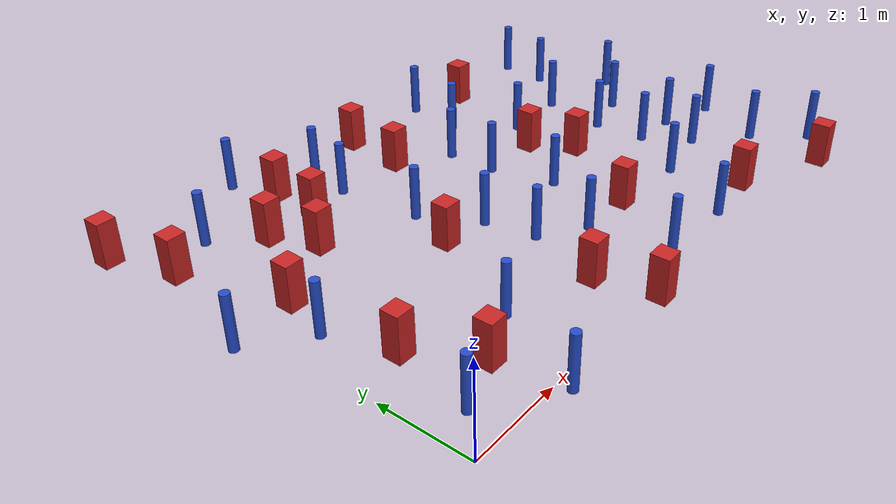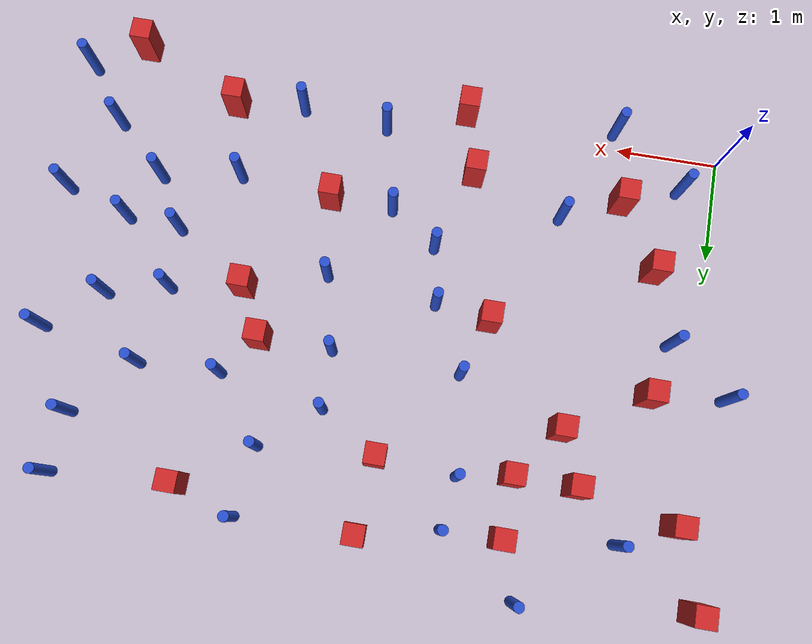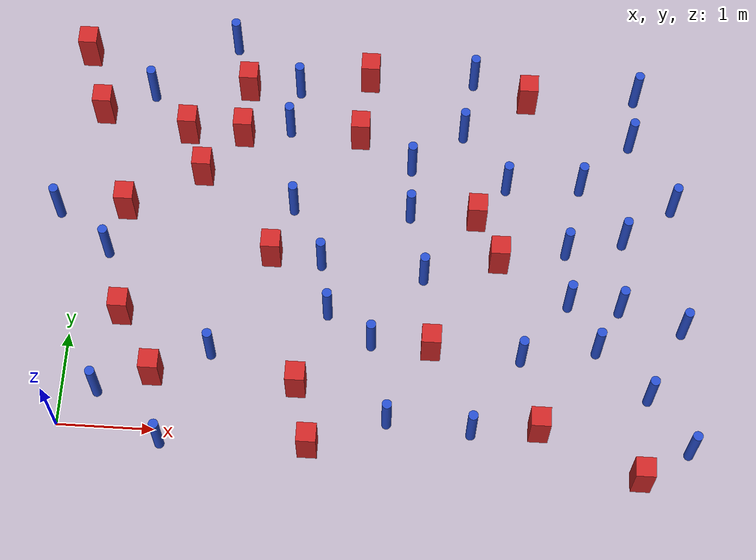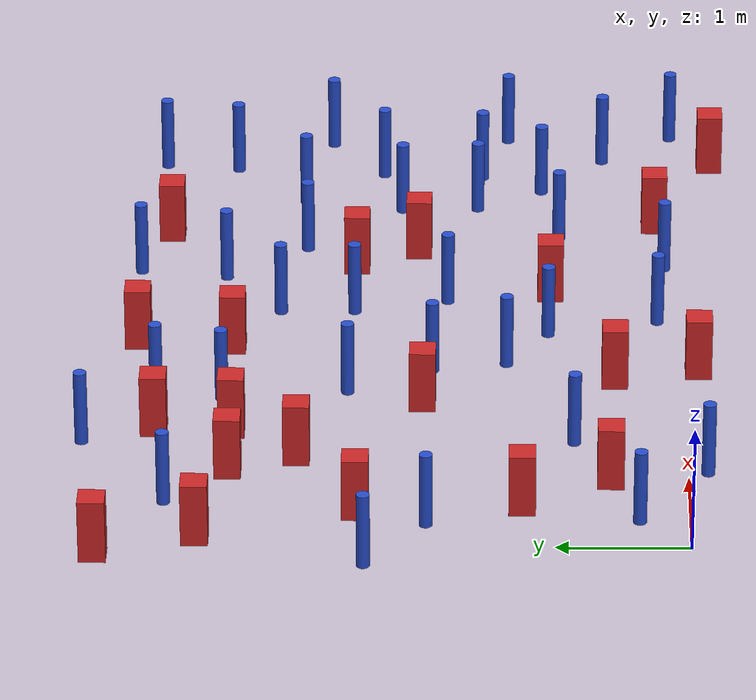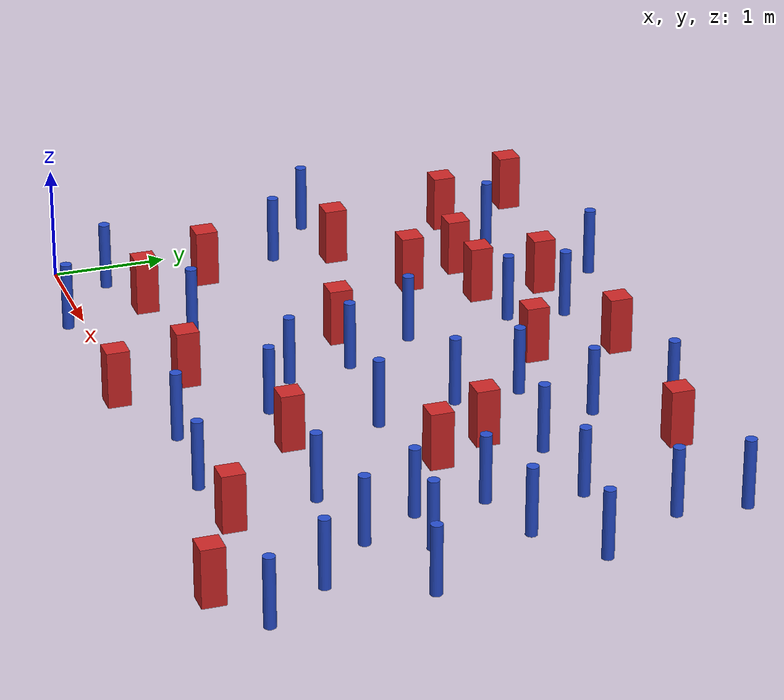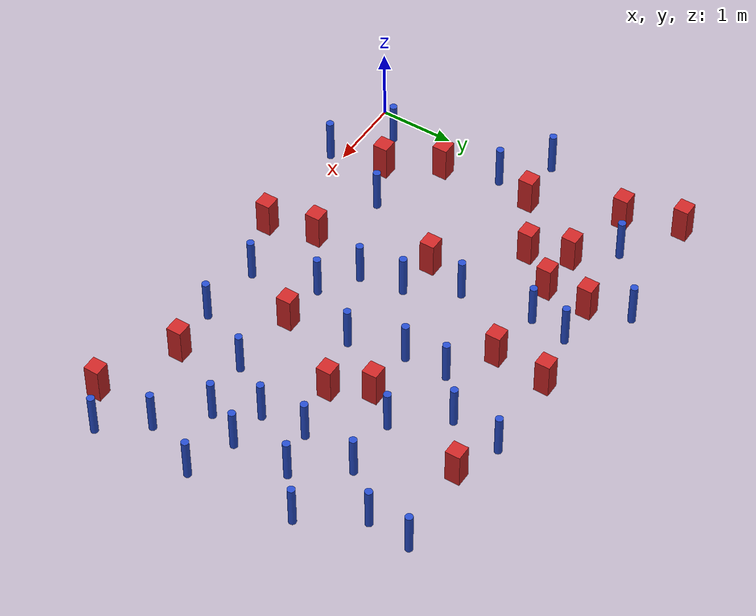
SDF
<sdf version="1.6">
 <model name="dense_14">
  <model name="pole_obstacle4">
   <static>true</static>
   <pose>3.4753207857 3.11598202601 7.38925637345e-09 -8.47170692798e-08 1.24976764939e-08 -1.74513093025e-07</pose>
   <link name="link">
    <pose>0 0 0.3 0 -0 0</pose>
    <inertial>
     <mass>1</mass>
     <inertia><ixx>0.145833</ixx><ixy>0</ixy><ixz>0</ixz><iyy>0.145833</iyy><iyz>0</iyz><izz>0.125</izz></inertia>
    </inertial>
    <collision name="collision">
     <geometry><cylinder><radius>0.05</radius><length>.6</length></cylinder></geometry>
    </collision>
    <visual name="visual">
     <geometry><cylinder><radius>0.05</radius><length>.6</length></cylinder></geometry>
     <material>
      <script><name>Gazebo/Blue</name><uri>file://media/materials/scripts/gazebo.material</uri></script>
     </material>
    </visual>
   </link>
  </model>
  <model name="square_post_obstacle7">
   <static>true</static>
   <pose>4.19259915789 2.54085804016 1.91545236811e-07 -7.35059704564e-06 1.12565212e-07 2.39332434364e-05</pose>
   <link name="link">
    <pose>0 0 0.25 0 -0 0</pose>
    <inertial>
     <mass>100</mass>
     <inertia>
      <ixx>0.166667</ixx>
      <ixy>0</ixy>
      <ixz>0</ixz>
      <iyy>0.166667</iyy>
      <iyz>0</iyz>
      <izz>0.166667</izz>
     </inertia>
    </inertial>
    <collision name="collision"><geometry><box><size>.2 .2 .5</size></box></geometry></collision>
    <visual name="visual">
     <geometry><box><size>.2 .2 .5</size></box></geometry>
     <material>
      <script><name>Gazebo/Red</name><uri>file://media/materials/scripts/gazebo.material</uri></script>
     </material>
    </visual>
   </link>
  </model>
  <model name="pole_obstacle9">
   <static>true</static>
   <pose>2.12831113329 3.52207049719 7.38925637345e-09 -8.47170692798e-08 1.24976764939e-08 -1.74513093025e-07</pose>
   <link name="link">
    <pose>0 0 0.3 0 -0 0</pose>
    <inertial>
     <mass>1</mass>
     <inertia><ixx>0.145833</ixx><ixy>0</ixy><ixz>0</ixz><iyy>0.145833</iyy><iyz>0</iyz><izz>0.125</izz></inertia>
    </inertial>
    <collision name="collision">
     <geometry><cylinder><radius>0.05</radius><length>.6</length></cylinder></geometry>
    </collision>
    <visual name="visual">
     <geometry><cylinder><radius>0.05</radius><length>.6</length></cylinder></geometry>
     <material>
      <script><name>Gazebo/Blue</name><uri>file://media/materials/scripts/gazebo.material</uri></script>
     </material>
    </visual>
   </link>
  </model>
  <model name="pole_obstacle12">
   <static>true</static>
   <pose>6.36594659354 1.35749647897 7.38925637345e-09 -8.471706928e-08 1.24976765134e-08 -1.74513093015e-07</pose>
   <link name="link">
    <pose>0 0 0.3 0 -0 0</pose>
    <inertial>
     <mass>1</mass>
     <inertia><ixx>0.145833</ixx><ixy>0</ixy><ixz>0</ixz><iyy>0.145833</iyy><iyz>0</iyz><izz>0.125</izz></inertia>
    </inertial>
    <collision name="collision">
     <geometry><cylinder><radius>0.05</radius><length>.6</length></cylinder></geometry>
    </collision>
    <visual name="visual">
     <geometry><cylinder><radius>0.05</radius><length>.6</length></cylinder></geometry>
     <material>
      <script><name>Gazebo/Blue</name><uri>file://media/materials/scripts/gazebo.material</uri></script>
     </material>
    </visual>
   </link>
  </model>
  <model name="pole_obstacle15">
   <static>true</static>
   <pose>3.6611542165 1.82092345411 7.38925637345e-09 -8.471706928e-08 1.24976765152e-08 -1.74513093012e-07</pose>
   <link name="link">
    <pose>0 0 0.3 0 -0 0</pose>
    <inertial>
     <mass>1</mass>
     <inertia><ixx>0.145833</ixx><ixy>0</ixy><ixz>0</ixz><iyy>0.145833</iyy><iyz>0</iyz><izz>0.125</izz></inertia>
    </inertial>
    <collision name="collision">
     <geometry><cylinder><radius>0.05</radius><length>.6</length></cylinder></geometry>
    </collision>
    <visual name="visual">
     <geometry><cylinder><radius>0.05</radius><length>.6</length></cylinder></geometry>
     <material>
      <script><name>Gazebo/Blue</name><uri>file://media/materials/scripts/gazebo.material</uri></script>
     </material>
    </visual>
   </link>
  </model>
  <model name="pole_obstacle19">
   <static>true</static>
   <pose>1.50019494946 0.849117613071 7.38925637345e-09 -8.47170692799e-08 1.24976765075e-08 -1.74513093017e-07</pose>
   <link name="link">
    <pose>0 0 0.3 0 -0 0</pose>
    <inertial>
     <mass>1</mass>
     <inertia><ixx>0.145833</ixx><ixy>0</ixy><ixz>0</ixz><iyy>0.145833</iyy><iyz>0</iyz><izz>0.125</izz></inertia>
    </inertial>
    <collision name="collision">
     <geometry><cylinder><radius>0.05</radius><length>.6</length></cylinder></geometry>
    </collision>
    <visual name="visual">
     <geometry><cylinder><radius>0.05</radius><length>.6</length></cylinder></geometry>
     <material>
      <script><name>Gazebo/Blue</name><uri>file://media/materials/scripts/gazebo.material</uri></script>
     </material>
    </visual>
   </link>
  </model>
  <model name="pole_obstacle21">
   <static>true</static>
   <pose>5.29207884988 2.97407495505 7.38925637345e-09 -8.47170692798e-08 1.24976764937e-08 -1.74513093023e-07</pose>
   <link name="link">
    <pose>0 0 0.3 0 -0 0</pose>
    <inertial>
     <mass>1</mass>
     <inertia><ixx>0.145833</ixx><ixy>0</ixy><ixz>0</ixz><iyy>0.145833</iyy><iyz>0</iyz><izz>0.125</izz></inertia>
    </inertial>
    <collision name="collision">
     <geometry><cylinder><radius>0.05</radius><length>.6</length></cylinder></geometry>
    </collision>
    <visual name="visual">
     <geometry><cylinder><radius>0.05</radius><length>.6</length></cylinder></geometry>
     <material>
      <script><name>Gazebo/Blue</name><uri>file://media/materials/scripts/gazebo.material</uri></script>
     </material>
    </visual>
   </link>
  </model>
  <model name="pole_obstacle22">
   <static>true</static>
   <pose>5.47900707221 1.08855759464 7.38925637345e-09 -8.471706928e-08 1.24976765134e-08 -1.74513093015e-07</pose>
   <link name="link">
    <pose>0 0 0.3 0 -0 0</pose>
    <inertial>
     <mass>1</mass>
     <inertia><ixx>0.145833</ixx><ixy>0</ixy><ixz>0</ixz><iyy>0.145833</iyy><iyz>0</iyz><izz>0.125</izz></inertia>
    </inertial>
    <collision name="collision">
     <geometry><cylinder><radius>0.05</radius><length>.6</length></cylinder></geometry>
    </collision>
    <visual name="visual">
     <geometry><cylinder><radius>0.05</radius><length>.6</length></cylinder></geometry>
     <material>
      <script><name>Gazebo/Blue</name><uri>file://media/materials/scripts/gazebo.material</uri></script>
     </material>
    </visual>
   </link>
  </model>
  <model name="square_post_obstacle34">
   <static>true</static>
   <pose>2.41054552737 0.534825494728 1.91545236811e-07 -7.35059704564e-06 1.12565212e-07 2.39332434364e-05</pose>
   <link name="link">
    <pose>0 0 0.25 0 -0 0</pose>
    <inertial>
     <mass>100</mass>
     <inertia>
      <ixx>0.166667</ixx>
      <ixy>0</ixy>
      <ixz>0</ixz>
      <iyy>0.166667</iyy>
      <iyz>0</iyz>
      <izz>0.166667</izz>
     </inertia>
    </inertial>
    <collision name="collision"><geometry><box><size>.2 .2 .5</size></box></geometry></collision>
    <visual name="visual">
     <geometry><box><size>.2 .2 .5</size></box></geometry>
     <material>
      <script><name>Gazebo/Red</name><uri>file://media/materials/scripts/gazebo.material</uri></script>
     </material>
    </visual>
   </link>
  </model>
  <model name="pole_obstacle32">
   <static>true</static>
   <pose>0.371892614302 0.373718450188 7.38925637345e-09 -8.471706928e-08 1.24976765138e-08 -1.74513093013e-07</pose>
   <link name="link">
    <pose>0 0 0.3 0 -0 0</pose>
    <inertial>
     <mass>1</mass>
     <inertia><ixx>0.145833</ixx><ixy>0</ixy><ixz>0</ixz><iyy>0.145833</iyy><iyz>0</iyz><izz>0.125</izz></inertia>
    </inertial>
    <collision name="collision">
     <geometry><cylinder><radius>0.05</radius><length>.6</length></cylinder></geometry>
    </collision>
    <visual name="visual">
     <geometry><cylinder><radius>0.05</radius><length>.6</length></cylinder></geometry>
     <material>
      <script><name>Gazebo/Blue</name><uri>file://media/materials/scripts/gazebo.material</uri></script>
     </material>
    </visual>
   </link>
  </model>
  <model name="pole_obstacle34">
   <static>true</static>
   <pose>5.82847256001 3.53852207408 7.38925637345e-09 -8.47170692798e-08 1.24976764937e-08 -1.74513093023e-07</pose>
   <link name="link">
    <pose>0 0 0.3 0 -0 0</pose>
    <inertial>
     <mass>1</mass>
     <inertia><ixx>0.145833</ixx><ixy>0</ixy><ixz>0</ixz><iyy>0.145833</iyy><iyz>0</iyz><izz>0.125</izz></inertia>
    </inertial>
    <collision name="collision">
     <geometry><cylinder><radius>0.05</radius><length>.6</length></cylinder></geometry>
    </collision>
    <visual name="visual">
     <geometry><cylinder><radius>0.05</radius><length>.6</length></cylinder></geometry>
     <material>
      <script><name>Gazebo/Blue</name><uri>file://media/materials/scripts/gazebo.material</uri></script>
     </material>
    </visual>
   </link>
  </model>
  <model name="pole_obstacle37">
   <static>true</static>
   <pose>0.306828091469 1.94678276555 7.38925637345e-09 -8.47170692798e-08 1.24976765025e-08 -1.74513093018e-07</pose>
   <link name="link">
    <pose>0 0 0.3 0 -0 0</pose>
    <inertial>
     <mass>1</mass>
     <inertia><ixx>0.145833</ixx><ixy>0</ixy><ixz>0</ixz><iyy>0.145833</iyy><iyz>0</iyz><izz>0.125</izz></inertia>
    </inertial>
    <collision name="collision">
     <geometry><cylinder><radius>0.05</radius><length>.6</length></cylinder></geometry>
    </collision>
    <visual name="visual">
     <geometry><cylinder><radius>0.05</radius><length>.6</length></cylinder></geometry>
     <material>
      <script><name>Gazebo/Blue</name><uri>file://media/materials/scripts/gazebo.material</uri></script>
     </material>
    </visual>
   </link>
  </model>
  <model name="pole_obstacle41">
   <static>true</static>
   <pose>2.2366368042 2.56774828889 7.38925637345e-09 -8.47170692798e-08 1.24976764939e-08 -1.74513093025e-07</pose>
   <link name="link">
    <pose>0 0 0.3 0 -0 0</pose>
    <inertial>
     <mass>1</mass>
     <inertia><ixx>0.145833</ixx><ixy>0</ixy><ixz>0</ixz><iyy>0.145833</iyy><iyz>0</iyz><izz>0.125</izz></inertia>
    </inertial>
    <collision name="collision">
     <geometry><cylinder><radius>0.05</radius><length>.6</length></cylinder></geometry>
    </collision>
    <visual name="visual">
     <geometry><cylinder><radius>0.05</radius><length>.6</length></cylinder></geometry>
     <material>
      <script><name>Gazebo/Blue</name><uri>file://media/materials/scripts/gazebo.material</uri></script>
     </material>
    </visual>
   </link>
  </model>
  <model name="square_post_obstacle40">
   <static>true</static>
   <pose>1.02761904171 3.43130359728 1.91545236811e-07 -7.35059704564e-06 1.12565212e-07 2.39332434364e-05</pose>
   <link name="link">
    <pose>0 0 0.25 0 -0 0</pose>
    <inertial>
     <mass>100</mass>
     <inertia>
      <ixx>0.166667</ixx>
      <ixy>0</ixy>
      <ixz>0</ixz>
      <iyy>0.166667</iyy>
      <iyz>0</iyz>
      <izz>0.166667</izz>
     </inertia>
    </inertial>
    <collision name="collision"><geometry><box><size>.2 .2 .5</size></box></geometry></collision>
    <visual name="visual">
     <geometry><box><size>.2 .2 .5</size></box></geometry>
     <material>
      <script><name>Gazebo/Red</name><uri>file://media/materials/scripts/gazebo.material</uri></script>
     </material>
    </visual>
   </link>
  </model>
  <model name="square_post_obstacle43">
   <static>true</static>
   <pose>0.0811977910479 3.63156764394 1.91545236811e-07 -7.35059704564e-06 1.12565212e-07 2.39332434364e-05</pose>
   <link name="link">
    <pose>0 0 0.25 0 -0 0</pose>
    <inertial>
     <mass>100</mass>
     <inertia>
      <ixx>0.166667</ixx>
      <ixy>0</ixy>
      <ixz>0</ixz>
      <iyy>0.166667</iyy>
      <iyz>0</iyz>
      <izz>0.166667</izz>
     </inertia>
    </inertial>
    <collision name="collision"><geometry><box><size>.2 .2 .5</size></box></geometry></collision>
    <visual name="visual">
     <geometry><box><size>.2 .2 .5</size></box></geometry>
     <material>
      <script><name>Gazebo/Red</name><uri>file://media/materials/scripts/gazebo.material</uri></script>
     </material>
    </visual>
   </link>
  </model>
  <model name="square_post_obstacle46">
   <static>true</static>
   <pose>2.89947783839 3.46783123335 1.91545236811e-07 -7.35059704564e-06 1.12565212e-07 2.39332434364e-05</pose>
   <link name="link">
    <pose>0 0 0.25 0 -0 0</pose>
    <inertial>
     <mass>100</mass>
     <inertia>
      <ixx>0.166667</ixx>
      <ixy>0</ixy>
      <ixz>0</ixz>
      <iyy>0.166667</iyy>
      <iyz>0</iyz>
      <izz>0.166667</izz>
     </inertia>
    </inertial>
    <collision name="collision"><geometry><box><size>.2 .2 .5</size></box></geometry></collision>
    <visual name="visual">
     <geometry><box><size>.2 .2 .5</size></box></geometry>
     <material>
      <script><name>Gazebo/Red</name><uri>file://media/materials/scripts/gazebo.material</uri></script>
     </material>
    </visual>
   </link>
  </model>
  <model name="square_post_obstacle50">
   <static>true</static>
   <pose>2.04448895842 1.99613748367 1.91545236811e-07 -7.35059704564e-06 1.12565212e-07 2.39332434364e-05</pose>
   <link name="link">
    <pose>0 0 0.25 0 -0 0</pose>
    <inertial>
     <mass>100</mass>
     <inertia>
      <ixx>0.166667</ixx>
      <ixy>0</ixy>
      <ixz>0</ixz>
      <iyy>0.166667</iyy>
      <iyz>0</iyz>
      <izz>0.166667</izz>
     </inertia>
    </inertial>
    <collision name="collision"><geometry><box><size>.2 .2 .5</size></box></geometry></collision>
    <visual name="visual">
     <geometry><box><size>.2 .2 .5</size></box></geometry>
     <material>
      <script><name>Gazebo/Red</name><uri>file://media/materials/scripts/gazebo.material</uri></script>
     </material>
    </visual>
   </link>
  </model>
  <model name="square_post_obstacle64">
   <static>true</static>
   <pose>1.64322874893 4.01217210504 1.91545236811e-07 -7.35059704564e-06 1.12565212e-07 2.39332434364e-05</pose>
   <link name="link">
    <pose>0 0 0.25 0 -0 0</pose>
    <inertial>
     <mass>100</mass>
     <inertia>
      <ixx>0.166667</ixx>
      <ixy>0</ixy>
      <ixz>0</ixz>
      <iyy>0.166667</iyy>
      <iyz>0</iyz>
      <izz>0.166667</izz>
     </inertia>
    </inertial>
    <collision name="collision"><geometry><box><size>.2 .2 .5</size></box></geometry></collision>
    <visual name="visual">
     <geometry><box><size>.2 .2 .5</size></box></geometry>
     <material>
      <script><name>Gazebo/Red</name><uri>file://media/materials/scripts/gazebo.material</uri></script>
     </material>
    </visual>
   </link>
  </model>
  <model name="pole_obstacle64">
   <static>true</static>
   <pose>2.6789766977 1.36043709312 7.38925637345e-09 -8.471706928e-08 1.24976765152e-08 -1.74513093012e-07</pose>
   <link name="link">
    <pose>0 0 0.3 0 -0 0</pose>
    <inertial>
     <mass>1</mass>
     <inertia><ixx>0.145833</ixx><ixy>0</ixy><ixz>0</ixz><iyy>0.145833</iyy><iyz>0</iyz><izz>0.125</izz></inertia>
    </inertial>
    <collision name="collision">
     <geometry><cylinder><radius>0.05</radius><length>.6</length></cylinder></geometry>
    </collision>
    <visual name="visual">
     <geometry><cylinder><radius>0.05</radius><length>.6</length></cylinder></geometry>
     <material>
      <script><name>Gazebo/Blue</name><uri>file://media/materials/scripts/gazebo.material</uri></script>
     </material>
    </visual>
   </link>
  </model>
  <model name="pole_obstacle78">
   <static>true</static>
   <pose>6.01016642665 0.596015054051 7.38925637345e-09 -8.47170692799e-08 1.24976765038e-08 -1.74513093018e-07</pose>
   <link name="link">
    <pose>0 0 0.3 0 -0 0</pose>
    <inertial>
     <mass>1</mass>
     <inertia><ixx>0.145833</ixx><ixy>0</ixy><ixz>0</ixz><iyy>0.145833</iyy><iyz>0</iyz><izz>0.125</izz></inertia>
    </inertial>
    <collision name="collision">
     <geometry><cylinder><radius>0.05</radius><length>.6</length></cylinder></geometry>
    </collision>
    <visual name="visual">
     <geometry><cylinder><radius>0.05</radius><length>.6</length></cylinder></geometry>
     <material>
      <script><name>Gazebo/Blue</name><uri>file://media/materials/scripts/gazebo.material</uri></script>
     </material>
    </visual>
   </link>
  </model>
  <model name="pole_obstacle96">
   <static>true</static>
   <pose>3.35391686732 0.193663910173 7.38925637345e-09 -8.47170692801e-08 1.24976765195e-08 -1.74513093011e-07</pose>
   <link name="link">
    <pose>0 0 0.3 0 -0 0</pose>
    <inertial>
     <mass>1</mass>
     <inertia><ixx>0.145833</ixx><ixy>0</ixy><ixz>0</ixz><iyy>0.145833</iyy><iyz>0</iyz><izz>0.125</izz></inertia>
    </inertial>
    <collision name="collision">
     <geometry><cylinder><radius>0.05</radius><length>.6</length></cylinder></geometry>
    </collision>
    <visual name="visual">
     <geometry><cylinder><radius>0.05</radius><length>.6</length></cylinder></geometry>
     <material>
      <script><name>Gazebo/Blue</name><uri>file://media/materials/scripts/gazebo.material</uri></script>
     </material>
    </visual>
   </link>
  </model>
  <model name="square_post_obstacle89">
   <static>true</static>
   <pose>0.535082998885 1.23949737687 1.91545236811e-07 -7.35059704564e-06 1.12565212e-07 2.39332434364e-05</pose>
   <link name="link">
    <pose>0 0 0.25 0 -0 0</pose>
    <inertial>
     <mass>100</mass>
     <inertia>
      <ixx>0.166667</ixx>
      <ixy>0</ixy>
      <ixz>0</ixz>
      <iyy>0.166667</iyy>
      <iyz>0</iyz>
      <izz>0.166667</izz>
     </inertia>
    </inertial>
    <collision name="collision"><geometry><box><size>.2 .2 .5</size></box></geometry></collision>
    <visual name="visual">
     <geometry><box><size>.2 .2 .5</size></box></geometry>
     <material>
      <script><name>Gazebo/Red</name><uri>file://media/materials/scripts/gazebo.material</uri></script>
     </material>
    </visual>
   </link>
  </model>
  <model name="square_post_obstacle91">
   <static>true</static>
   <pose>0.924591864158 0.582892531093 1.91545236811e-07 -7.35059704564e-06 1.12565212e-07 2.39332434364e-05</pose>
   <link name="link">
    <pose>0 0 0.25 0 -0 0</pose>
    <inertial>
     <mass>100</mass>
     <inertia>
      <ixx>0.166667</ixx>
      <ixy>0</ixy>
      <ixz>0</ixz>
      <iyy>0.166667</iyy>
      <iyz>0</iyz>
      <izz>0.166667</izz>
     </inertia>
    </inertial>
    <collision name="collision"><geometry><box><size>.2 .2 .5</size></box></geometry></collision>
    <visual name="visual">
     <geometry><box><size>.2 .2 .5</size></box></geometry>
     <material>
      <script><name>Gazebo/Red</name><uri>file://media/materials/scripts/gazebo.material</uri></script>
     </material>
    </visual>
   </link>
  </model>
  <model name="square_post_obstacle95">
   <static>true</static>
   <pose>4.70060899639 4.02054487223 1.91545236811e-07 -7.35059704564e-06 1.12565212e-07 2.39332434364e-05</pose>
   <link name="link">
    <pose>0 0 0.25 0 -0 0</pose>
    <inertial>
     <mass>100</mass>
     <inertia>
      <ixx>0.166667</ixx>
      <ixy>0</ixy>
      <ixz>0</ixz>
      <iyy>0.166667</iyy>
      <iyz>0</iyz>
      <izz>0.166667</izz>
     </inertia>
    </inertial>
    <collision name="collision"><geometry><box><size>.2 .2 .5</size></box></geometry></collision>
    <visual name="visual">
     <geometry><box><size>.2 .2 .5</size></box></geometry>
     <material>
      <script><name>Gazebo/Red</name><uri>file://media/materials/scripts/gazebo.material</uri></script>
     </material>
    </visual>
   </link>
  </model>
  <model name="pole_obstacle118">
   <static>true</static>
   <pose>-0.266246674676 2.39301318907 7.38925637345e-09 -8.471706928e-08 1.24976765139e-08 -1.74513093014e-07</pose>
   <link name="link">
    <pose>0 0 0.3 0 -0 0</pose>
    <inertial>
     <mass>1</mass>
     <inertia><ixx>0.145833</ixx><ixy>0</ixy><ixz>0</ixz><iyy>0.145833</iyy><iyz>0</iyz><izz>0.125</izz></inertia>
    </inertial>
    <collision name="collision">
     <geometry><cylinder><radius>0.05</radius><length>.6</length></cylinder></geometry>
    </collision>
    <visual name="visual">
     <geometry><cylinder><radius>0.05</radius><length>.6</length></cylinder></geometry>
     <material>
      <script><name>Gazebo/Blue</name><uri>file://media/materials/scripts/gazebo.material</uri></script>
     </material>
    </visual>
   </link>
  </model>
  <model name="square_post_obstacle105">
   <static>true</static>
   <pose>2.57095059268 -0.106861203602 1.91545236811e-07 -7.35059704564e-06 1.12565212e-07 2.39332434364e-05</pose>
   <link name="link">
    <pose>0 0 0.25 0 -0 0</pose>
    <inertial>
     <mass>100</mass>
     <inertia>
      <ixx>0.166667</ixx>
      <ixy>0</ixy>
      <ixz>0</ixz>
      <iyy>0.166667</iyy>
      <iyz>0</iyz>
      <izz>0.166667</izz>
     </inertia>
    </inertial>
    <collision name="collision"><geometry><box><size>.2 .2 .5</size></box></geometry></collision>
    <visual name="visual">
     <geometry><box><size>.2 .2 .5</size></box></geometry>
     <material>
      <script><name>Gazebo/Red</name><uri>file://media/materials/scripts/gazebo.material</uri></script>
     </material>
    </visual>
   </link>
  </model>
  <model name="pole_obstacle119">
   <static>true</static>
   <pose>4.01920119011 3.56018556924 7.38925637345e-09 -8.47170692799e-08 1.24976765e-08 -1.7451309302e-07</pose>
   <link name="link">
    <pose>0 0 0.3 0 -0 0</pose>
    <inertial>
     <mass>1</mass>
     <inertia><ixx>0.145833</ixx><ixy>0</ixy><ixz>0</ixz><iyy>0.145833</iyy><iyz>0</iyz><izz>0.125</izz></inertia>
    </inertial>
    <collision name="collision">
     <geometry><cylinder><radius>0.05</radius><length>.6</length></cylinder></geometry>
    </collision>
    <visual name="visual">
     <geometry><cylinder><radius>0.05</radius><length>.6</length></cylinder></geometry>
     <material>
      <script><name>Gazebo/Blue</name><uri>file://media/materials/scripts/gazebo.material</uri></script>
     </material>
    </visual>
   </link>
  </model>
  <model name="pole_obstacle131">
   <static>true</static>
   <pose>5.75321398918 2.354576415 7.38925637345e-09 -8.47170692798e-08 1.24976764937e-08 -1.74513093023e-07</pose>
   <link name="link">
    <pose>0 0 0.3 0 -0 0</pose>
    <inertial>
     <mass>1</mass>
     <inertia><ixx>0.145833</ixx><ixy>0</ixy><ixz>0</ixz><iyy>0.145833</iyy><iyz>0</iyz><izz>0.125</izz></inertia>
    </inertial>
    <collision name="collision">
     <geometry><cylinder><radius>0.05</radius><length>.6</length></cylinder></geometry>
    </collision>
    <visual name="visual">
     <geometry><cylinder><radius>0.05</radius><length>.6</length></cylinder></geometry>
     <material>
      <script><name>Gazebo/Blue</name><uri>file://media/materials/scripts/gazebo.material</uri></script>
     </material>
    </visual>
   </link>
  </model>
  <model name="square_post_obstacle123">
   <static>true</static>
   <pose>3.76766822107 1.02142883052 1.91545236811e-07 -7.35059704564e-06 1.12565212e-07 2.39332434364e-05</pose>
   <link name="link">
    <pose>0 0 0.25 0 -0 0</pose>
    <inertial>
     <mass>100</mass>
     <inertia>
      <ixx>0.166667</ixx>
      <ixy>0</ixy>
      <ixz>0</ixz>
      <iyy>0.166667</iyy>
      <iyz>0</iyz>
      <izz>0.166667</izz>
     </inertia>
    </inertial>
    <collision name="collision"><geometry><box><size>.2 .2 .5</size></box></geometry></collision>
    <visual name="visual">
     <geometry><box><size>.2 .2 .5</size></box></geometry>
     <material>
      <script><name>Gazebo/Red</name><uri>file://media/materials/scripts/gazebo.material</uri></script>
     </material>
    </visual>
   </link>
  </model>
  <model name="pole_obstacle142">
   <static>true</static>
   <pose>3.48668480515 2.54363415938 7.38925637345e-09 -8.47170692798e-08 1.24976764939e-08 -1.74513093025e-07</pose>
   <link name="link">
    <pose>0 0 0.3 0 -0 0</pose>
    <inertial>
     <mass>1</mass>
     <inertia><ixx>0.145833</ixx><ixy>0</ixy><ixz>0</ixz><iyy>0.145833</iyy><iyz>0</iyz><izz>0.125</izz></inertia>
    </inertial>
    <collision name="collision">
     <geometry><cylinder><radius>0.05</radius><length>.6</length></cylinder></geometry>
    </collision>
    <visual name="visual">
     <geometry><cylinder><radius>0.05</radius><length>.6</length></cylinder></geometry>
     <material>
      <script><name>Gazebo/Blue</name><uri>file://media/materials/scripts/gazebo.material</uri></script>
     </material>
    </visual>
   </link>
  </model>
  <model name="pole_obstacle144">
   <static>true</static>
   <pose>1.06923113536 -0.145448115089 7.38925637345e-09 -8.47170692798e-08 1.24976765004e-08 -1.7451309302e-07</pose>
   <link name="link">
    <pose>0 0 0.3 0 -0 0</pose>
    <inertial>
     <mass>1</mass>
     <inertia><ixx>0.145833</ixx><ixy>0</ixy><ixz>0</ixz><iyy>0.145833</iyy><iyz>0</iyz><izz>0.125</izz></inertia>
    </inertial>
    <collision name="collision">
     <geometry><cylinder><radius>0.05</radius><length>.6</length></cylinder></geometry>
    </collision>
    <visual name="visual">
     <geometry><cylinder><radius>0.05</radius><length>.6</length></cylinder></geometry>
     <material>
      <script><name>Gazebo/Blue</name><uri>file://media/materials/scripts/gazebo.material</uri></script>
     </material>
    </visual>
   </link>
  </model>
  <model name="pole_obstacle148">
   <static>true</static>
   <pose>4.10869115487 4.23374073923 7.38925637345e-09 -8.47170692796e-08 1.24976764786e-08 -1.74513093032e-07</pose>
   <link name="link">
    <pose>0 0 0.3 0 -0 0</pose>
    <inertial>
     <mass>1</mass>
     <inertia><ixx>0.145833</ixx><ixy>0</ixy><ixz>0</ixz><iyy>0.145833</iyy><iyz>0</iyz><izz>0.125</izz></inertia>
    </inertial>
    <collision name="collision">
     <geometry><cylinder><radius>0.05</radius><length>.6</length></cylinder></geometry>
    </collision>
    <visual name="visual">
     <geometry><cylinder><radius>0.05</radius><length>.6</length></cylinder></geometry>
     <material>
      <script><name>Gazebo/Blue</name><uri>file://media/materials/scripts/gazebo.material</uri></script>
     </material>
    </visual>
   </link>
  </model>
  <model name="pole_obstacle149">
   <static>true</static>
   <pose>5.71678005131 1.56332053617 7.38925637345e-09 -8.471706928e-08 1.24976765134e-08 -1.74513093015e-07</pose>
   <link name="link">
    <pose>0 0 0.3 0 -0 0</pose>
    <inertial>
     <mass>1</mass>
     <inertia><ixx>0.145833</ixx><ixy>0</ixy><ixz>0</ixz><iyy>0.145833</iyy><iyz>0</iyz><izz>0.125</izz></inertia>
    </inertial>
    <collision name="collision">
     <geometry><cylinder><radius>0.05</radius><length>.6</length></cylinder></geometry>
    </collision>
    <visual name="visual">
     <geometry><cylinder><radius>0.05</radius><length>.6</length></cylinder></geometry>
     <material>
      <script><name>Gazebo/Blue</name><uri>file://media/materials/scripts/gazebo.material</uri></script>
     </material>
    </visual>
   </link>
  </model>
  <model name="pole_obstacle157">
   <static>true</static>
   <pose>3.14970973654 1.04014739575 7.38925637345e-09 -8.47170692793e-08 1.2497676438e-08 -1.74513093043e-07</pose>
   <link name="link">
    <pose>0 0 0.3 0 -0 0</pose>
    <inertial>
     <mass>1</mass>
     <inertia><ixx>0.145833</ixx><ixy>0</ixy><ixz>0</ixz><iyy>0.145833</iyy><iyz>0</iyz><izz>0.125</izz></inertia>
    </inertial>
    <collision name="collision">
     <geometry><cylinder><radius>0.05</radius><length>.6</length></cylinder></geometry>
    </collision>
    <visual name="visual">
     <geometry><cylinder><radius>0.05</radius><length>.6</length></cylinder></geometry>
     <material>
      <script><name>Gazebo/Blue</name><uri>file://media/materials/scripts/gazebo.material</uri></script>
     </material>
    </visual>
   </link>
  </model>
  <model name="pole_obstacle161">
   <static>true</static>
   <pose>4.50021784292 2.93690601603 7.38925637345e-09 -8.47170692798e-08 1.24976764937e-08 -1.74513093023e-07</pose>
   <link name="link">
    <pose>0 0 0.3 0 -0 0</pose>
    <inertial>
     <mass>1</mass>
     <inertia><ixx>0.145833</ixx><ixy>0</ixy><ixz>0</ixz><iyy>0.145833</iyy><iyz>0</iyz><izz>0.125</izz></inertia>
    </inertial>
    <collision name="collision">
     <geometry><cylinder><radius>0.05</radius><length>.6</length></cylinder></geometry>
    </collision>
    <visual name="visual">
     <geometry><cylinder><radius>0.05</radius><length>.6</length></cylinder></geometry>
     <material>
      <script><name>Gazebo/Blue</name><uri>file://media/materials/scripts/gazebo.material</uri></script>
     </material>
    </visual>
   </link>
  </model>
  <model name="square_post_obstacle156">
   <static>true</static>
   <pose>5.92356588885 -0.27020507551 1.91545236811e-07 -7.35059704564e-06 1.12565212e-07 2.39332434364e-05</pose>
   <link name="link">
    <pose>0 0 0.25 0 -0 0</pose>
    <inertial>
     <mass>100</mass>
     <inertia>
      <ixx>0.166667</ixx>
      <ixy>0</ixy>
      <ixz>0</ixz>
      <iyy>0.166667</iyy>
      <iyz>0</iyz>
      <izz>0.166667</izz>
     </inertia>
    </inertial>
    <collision name="collision"><geometry><box><size>.2 .2 .5</size></box></geometry></collision>
    <visual name="visual">
     <geometry><box><size>.2 .2 .5</size></box></geometry>
     <material>
      <script><name>Gazebo/Red</name><uri>file://media/materials/scripts/gazebo.material</uri></script>
     </material>
    </visual>
   </link>
  </model>
  <model name="pole_obstacle168">
   <static>true</static>
   <pose>6.41914053952 0.0401477946493 7.38925637345e-09 -8.471706928e-08 1.24976765155e-08 -1.74513093014e-07</pose>
   <link name="link">
    <pose>0 0 0.3 0 -0 0</pose>
    <inertial>
     <mass>1</mass>
     <inertia><ixx>0.145833</ixx><ixy>0</ixy><ixz>0</ixz><iyy>0.145833</iyy><iyz>0</iyz><izz>0.125</izz></inertia>
    </inertial>
    <collision name="collision">
     <geometry><cylinder><radius>0.05</radius><length>.6</length></cylinder></geometry>
    </collision>
    <visual name="visual">
     <geometry><cylinder><radius>0.05</radius><length>.6</length></cylinder></geometry>
     <material>
      <script><name>Gazebo/Blue</name><uri>file://media/materials/scripts/gazebo.material</uri></script>
     </material>
    </visual>
   </link>
  </model>
  <model name="pole_obstacle172">
   <static>true</static>
   <pose>4.21222684725 0.126250132426 7.38925637345e-09 -8.47170692801e-08 1.24976765186e-08 -1.74513093012e-07</pose>
   <link name="link">
    <pose>0 0 0.3 0 -0 0</pose>
    <inertial>
     <mass>1</mass>
     <inertia><ixx>0.145833</ixx><ixy>0</ixy><ixz>0</ixz><iyy>0.145833</iyy><iyz>0</iyz><izz>0.125</izz></inertia>
    </inertial>
    <collision name="collision">
     <geometry><cylinder><radius>0.05</radius><length>.6</length></cylinder></geometry>
    </collision>
    <visual name="visual">
     <geometry><cylinder><radius>0.05</radius><length>.6</length></cylinder></geometry>
     <material>
      <script><name>Gazebo/Blue</name><uri>file://media/materials/scripts/gazebo.material</uri></script>
     </material>
    </visual>
   </link>
  </model>
  <model name="square_post_obstacle166">
   <static>true</static>
   <pose>4.89168215768 0.193719007267 1.91545236811e-07 -7.35059704564e-06 1.12565212e-07 2.39332434364e-05</pose>
   <link name="link">
    <pose>0 0 0.25 0 -0 0</pose>
    <inertial>
     <mass>100</mass>
     <inertia>
      <ixx>0.166667</ixx>
      <ixy>0</ixy>
      <ixz>0</ixz>
      <iyy>0.166667</iyy>
      <iyz>0</iyz>
      <izz>0.166667</izz>
     </inertia>
    </inertial>
    <collision name="collision"><geometry><box><size>.2 .2 .5</size></box></geometry></collision>
    <visual name="visual">
     <geometry><box><size>.2 .2 .5</size></box></geometry>
     <material>
      <script><name>Gazebo/Red</name><uri>file://media/materials/scripts/gazebo.material</uri></script>
     </material>
    </visual>
   </link>
  </model>
  <model name="pole_obstacle182">
   <static>true</static>
   <pose>2.20113438576 4.0248015241 7.38925637345e-09 -8.47170692799e-08 1.24976765036e-08 -1.74513093019e-07</pose>
   <link name="link">
    <pose>0 0 0.3 0 -0 0</pose>
    <inertial>
     <mass>1</mass>
     <inertia><ixx>0.145833</ixx><ixy>0</ixy><ixz>0</ixz><iyy>0.145833</iyy><iyz>0</iyz><izz>0.125</izz></inertia>
    </inertial>
    <collision name="collision">
     <geometry><cylinder><radius>0.05</radius><length>.6</length></cylinder></geometry>
    </collision>
    <visual name="visual">
     <geometry><cylinder><radius>0.05</radius><length>.6</length></cylinder></geometry>
     <material>
      <script><name>Gazebo/Blue</name><uri>file://media/materials/scripts/gazebo.material</uri></script>
     </material>
    </visual>
   </link>
  </model>
  <model name="pole_obstacle183">
   <static>true</static>
   <pose>2.57483083615 1.92817841631 7.38925637345e-09 -8.471706928e-08 1.24976765152e-08 -1.74513093012e-07</pose>
   <link name="link">
    <pose>0 0 0.3 0 -0 0</pose>
    <inertial>
     <mass>1</mass>
     <inertia><ixx>0.145833</ixx><ixy>0</ixy><ixz>0</ixz><iyy>0.145833</iyy><iyz>0</iyz><izz>0.125</izz></inertia>
    </inertial>
    <collision name="collision">
     <geometry><cylinder><radius>0.05</radius><length>.6</length></cylinder></geometry>
    </collision>
    <visual name="visual">
     <geometry><cylinder><radius>0.05</radius><length>.6</length></cylinder></geometry>
     <material>
      <script><name>Gazebo/Blue</name><uri>file://media/materials/scripts/gazebo.material</uri></script>
     </material>
    </visual>
   </link>
  </model>
  <model name="square_post_obstacle174">
   <static>true</static>
   <pose>2.96708197915 4.19876967293 1.91545236811e-07 -7.35059704564e-06 1.12565212e-07 2.39332434364e-05</pose>
   <link name="link">
    <pose>0 0 0.25 0 -0 0</pose>
    <inertial>
     <mass>100</mass>
     <inertia>
      <ixx>0.166667</ixx>
      <ixy>0</ixy>
      <ixz>0</ixz>
      <iyy>0.166667</iyy>
      <iyz>0</iyz>
      <izz>0.166667</izz>
     </inertia>
    </inertial>
    <collision name="collision"><geometry><box><size>.2 .2 .5</size></box></geometry></collision>
    <visual name="visual">
     <geometry><box><size>.2 .2 .5</size></box></geometry>
     <material>
      <script><name>Gazebo/Red</name><uri>file://media/materials/scripts/gazebo.material</uri></script>
     </material>
    </visual>
   </link>
  </model>
  <model name="square_post_obstacle176">
   <static>true</static>
   <pose>-0.162100389314 4.36190301935 1.91545236811e-07 -7.35059704564e-06 1.12565212e-07 2.39332434364e-05</pose>
   <link name="link">
    <pose>0 0 0.25 0 -0 0</pose>
    <inertial>
     <mass>100</mass>
     <inertia>
      <ixx>0.166667</ixx>
      <ixy>0</ixy>
      <ixz>0</ixz>
      <iyy>0.166667</iyy>
      <iyz>0</iyz>
      <izz>0.166667</izz>
     </inertia>
    </inertial>
    <collision name="collision"><geometry><box><size>.2 .2 .5</size></box></geometry></collision>
    <visual name="visual">
     <geometry><box><size>.2 .2 .5</size></box></geometry>
     <material>
      <script><name>Gazebo/Red</name><uri>file://media/materials/scripts/gazebo.material</uri></script>
     </material>
    </visual>
   </link>
  </model>
  <model name="pole_obstacle189">
   <static>true</static>
   <pose>1.46147165143 4.54668896501 7.38925637345e-09 -8.47170692799e-08 1.24976765033e-08 -1.74513093018e-07</pose>
   <link name="link">
    <pose>0 0 0.3 0 -0 0</pose>
    <inertial>
     <mass>1</mass>
     <inertia><ixx>0.145833</ixx><ixy>0</ixy><ixz>0</ixz><iyy>0.145833</iyy><iyz>0</iyz><izz>0.125</izz></inertia>
    </inertial>
    <collision name="collision">
     <geometry><cylinder><radius>0.05</radius><length>.6</length></cylinder></geometry>
    </collision>
    <visual name="visual">
     <geometry><cylinder><radius>0.05</radius><length>.6</length></cylinder></geometry>
     <material>
      <script><name>Gazebo/Blue</name><uri>file://media/materials/scripts/gazebo.material</uri></script>
     </material>
    </visual>
   </link>
  </model>
  <model name="square_post_obstacle185">
   <static>true</static>
   <pose>0.452328931145 2.46807950232 1.91545236811e-07 -7.35059704564e-06 1.12565212e-07 2.39332434364e-05</pose>
   <link name="link">
    <pose>0 0 0.25 0 -0 0</pose>
    <inertial>
     <mass>100</mass>
     <inertia>
      <ixx>0.166667</ixx>
      <ixy>0</ixy>
      <ixz>0</ixz>
      <iyy>0.166667</iyy>
      <iyz>0</iyz>
      <izz>0.166667</izz>
     </inertia>
    </inertial>
    <collision name="collision"><geometry><box><size>.2 .2 .5</size></box></geometry></collision>
    <visual name="visual">
     <geometry><box><size>.2 .2 .5</size></box></geometry>
     <material>
      <script><name>Gazebo/Red</name><uri>file://media/materials/scripts/gazebo.material</uri></script>
     </material>
    </visual>
   </link>
  </model>
  <model name="square_post_obstacle187">
   <static>true</static>
   <pose>4.4434001883 2.05645381193 1.91545236811e-07 -7.35059704564e-06 1.12565212e-07 2.39332434364e-05</pose>
   <link name="link">
    <pose>0 0 0.25 0 -0 0</pose>
    <inertial>
     <mass>100</mass>
     <inertia>
      <ixx>0.166667</ixx>
      <ixy>0</ixy>
      <ixz>0</ixz>
      <iyy>0.166667</iyy>
      <iyz>0</iyz>
      <izz>0.166667</izz>
     </inertia>
    </inertial>
    <collision name="collision"><geometry><box><size>.2 .2 .5</size></box></geometry></collision>
    <visual name="visual">
     <geometry><box><size>.2 .2 .5</size></box></geometry>
     <material>
      <script><name>Gazebo/Red</name><uri>file://media/materials/scripts/gazebo.material</uri></script>
     </material>
    </visual>
   </link>
  </model>
  <model name="pole_obstacle196">
   <static>true</static>
   <pose>6.27702254465 2.77725074737 7.38925637345e-09 -8.47170692798e-08 1.24976764937e-08 -1.74513093023e-07</pose>
   <link name="link">
    <pose>0 0 0.3 0 -0 0</pose>
    <inertial>
     <mass>1</mass>
     <inertia><ixx>0.145833</ixx><ixy>0</ixy><ixz>0</ixz><iyy>0.145833</iyy><iyz>0</iyz><izz>0.125</izz></inertia>
    </inertial>
    <collision name="collision">
     <geometry><cylinder><radius>0.05</radius><length>.6</length></cylinder></geometry>
    </collision>
    <visual name="visual">
     <geometry><cylinder><radius>0.05</radius><length>.6</length></cylinder></geometry>
     <material>
      <script><name>Gazebo/Blue</name><uri>file://media/materials/scripts/gazebo.material</uri></script>
     </material>
    </visual>
   </link>
  </model>
  <model name="pole_obstacle203">
   <static>true</static>
   <pose>5.8858728784 4.1187089224 7.38925637345e-09 -8.47170692796e-08 1.24976764786e-08 -1.74513093032e-07</pose>
   <link name="link">
    <pose>0 0 0.3 0 -0 0</pose>
    <inertial>
     <mass>1</mass>
     <inertia><ixx>0.145833</ixx><ixy>0</ixy><ixz>0</ixz><iyy>0.145833</iyy><iyz>0</iyz><izz>0.125</izz></inertia>
    </inertial>
    <collision name="collision">
     <geometry><cylinder><radius>0.05</radius><length>.6</length></cylinder></geometry>
    </collision>
    <visual name="visual">
     <geometry><cylinder><radius>0.05</radius><length>.6</length></cylinder></geometry>
     <material>
      <script><name>Gazebo/Blue</name><uri>file://media/materials/scripts/gazebo.material</uri></script>
     </material>
    </visual>
   </link>
  </model>
  <model name="pole_obstacle207">
   <static>true</static>
   <pose>5.15161181646 2.19750387083 7.38925637345e-09 -8.47170692798e-08 1.24976764937e-08 -1.74513093023e-07</pose>
   <link name="link">
    <pose>0 0 0.3 0 -0 0</pose>
    <inertial>
     <mass>1</mass>
     <inertia><ixx>0.145833</ixx><ixy>0</ixy><ixz>0</ixz><iyy>0.145833</iyy><iyz>0</iyz><izz>0.125</izz></inertia>
    </inertial>
    <collision name="collision">
     <geometry><cylinder><radius>0.05</radius><length>.6</length></cylinder></geometry>
    </collision>
    <visual name="visual">
     <geometry><cylinder><radius>0.05</radius><length>.6</length></cylinder></geometry>
     <material>
      <script><name>Gazebo/Blue</name><uri>file://media/materials/scripts/gazebo.material</uri></script>
     </material>
    </visual>
   </link>
  </model>
  <model name="pole_obstacle209">
   <static>true</static>
   <pose>4.70050835746 0.950989069642 7.38925637345e-09 -8.471706928e-08 1.24976765166e-08 -1.74513093011e-07</pose>
   <link name="link">
    <pose>0 0 0.3 0 -0 0</pose>
    <inertial>
     <mass>1</mass>
     <inertia><ixx>0.145833</ixx><ixy>0</ixy><ixz>0</ixz><iyy>0.145833</iyy><iyz>0</iyz><izz>0.125</izz></inertia>
    </inertial>
    <collision name="collision">
     <geometry><cylinder><radius>0.05</radius><length>.6</length></cylinder></geometry>
    </collision>
    <visual name="visual">
     <geometry><cylinder><radius>0.05</radius><length>.6</length></cylinder></geometry>
     <material>
      <script><name>Gazebo/Blue</name><uri>file://media/materials/scripts/gazebo.material</uri></script>
     </material>
    </visual>
   </link>
  </model>
  <model name="pole_obstacle211">
   <static>true</static>
   <pose>0.595922340299 3.88736038592 7.38925637345e-09 -8.47170692799e-08 1.2497676509e-08 -1.74513093016e-07</pose>
   <link name="link">
    <pose>0 0 0.3 0 -0 0</pose>
    <inertial>
     <mass>1</mass>
     <inertia><ixx>0.145833</ixx><ixy>0</ixy><ixz>0</ixz><iyy>0.145833</iyy><iyz>0</iyz><izz>0.125</izz></inertia>
    </inertial>
    <collision name="collision">
     <geometry><cylinder><radius>0.05</radius><length>.6</length></cylinder></geometry>
    </collision>
    <visual name="visual">
     <geometry><cylinder><radius>0.05</radius><length>.6</length></cylinder></geometry>
     <material>
      <script><name>Gazebo/Blue</name><uri>file://media/materials/scripts/gazebo.material</uri></script>
     </material>
    </visual>
   </link>
  </model>
  <model name="pole_obstacle212">
   <static>true</static>
   <pose>5.18268755363 1.59778263589 7.38925637345e-09 -8.471706928e-08 1.24976765134e-08 -1.74513093015e-07</pose>
   <link name="link">
    <pose>0 0 0.3 0 -0 0</pose>
    <inertial>
     <mass>1</mass>
     <inertia><ixx>0.145833</ixx><ixy>0</ixy><ixz>0</ixz><iyy>0.145833</iyy><iyz>0</iyz><izz>0.125</izz></inertia>
    </inertial>
    <collision name="collision">
     <geometry><cylinder><radius>0.05</radius><length>.6</length></cylinder></geometry>
    </collision>
    <visual name="visual">
     <geometry><cylinder><radius>0.05</radius><length>.6</length></cylinder></geometry>
     <material>
      <script><name>Gazebo/Blue</name><uri>file://media/materials/scripts/gazebo.material</uri></script>
     </material>
    </visual>
   </link>
  </model>
  <model name="square_post_obstacle218">
   <static>true</static>
   <pose>1.23232413054 2.92533557726 1.91545236811e-07 -7.35059704564e-06 1.12565212e-07 2.39332434364e-05</pose>
   <link name="link">
    <pose>0 0 0.25 0 -0 0</pose>
    <inertial>
     <mass>100</mass>
     <inertia>
      <ixx>0.166667</ixx>
      <ixy>0</ixy>
      <ixz>0</ixz>
      <iyy>0.166667</iyy>
      <iyz>0</iyz>
      <izz>0.166667</izz>
     </inertia>
    </inertial>
    <collision name="collision"><geometry><box><size>.2 .2 .5</size></box></geometry></collision>
    <visual name="visual">
     <geometry><box><size>.2 .2 .5</size></box></geometry>
     <material>
      <script><name>Gazebo/Red</name><uri>file://media/materials/scripts/gazebo.material</uri></script>
     </material>
    </visual>
   </link>
  </model>
  <model name="square_post_obstacle219">
   <static>true</static>
   <pose>1.62887381285 3.42778979589 1.91545236811e-07 -7.35059704564e-06 1.12565212e-07 2.39332434364e-05</pose>
   <link name="link">
    <pose>0 0 0.25 0 -0 0</pose>
    <inertial>
     <mass>100</mass>
     <inertia>
      <ixx>0.166667</ixx>
      <ixy>0</ixy>
      <ixz>0</ixz>
      <iyy>0.166667</iyy>
      <iyz>0</iyz>
      <izz>0.166667</izz>
     </inertia>
    </inertial>
    <collision name="collision"><geometry><box><size>.2 .2 .5</size></box></geometry></collision>
    <visual name="visual">
     <geometry><box><size>.2 .2 .5</size></box></geometry>
     <material>
      <script><name>Gazebo/Red</name><uri>file://media/materials/scripts/gazebo.material</uri></script>
     </material>
    </visual>
   </link>
  </model>
 </model>
</sdf>
